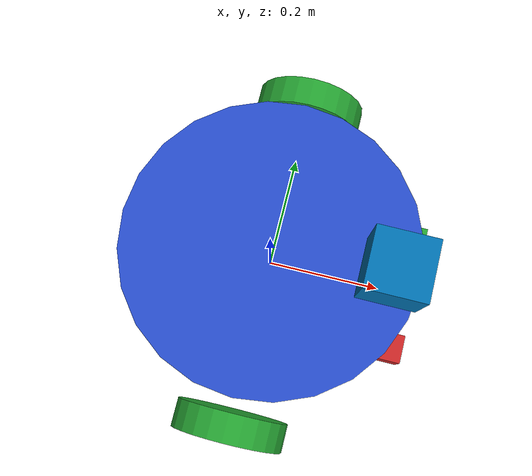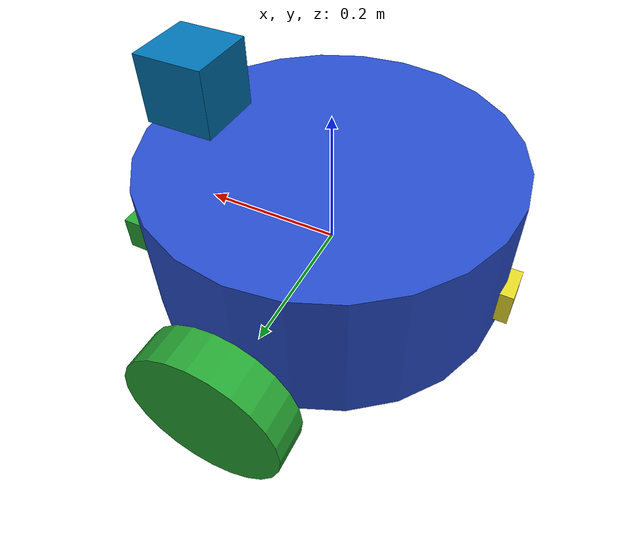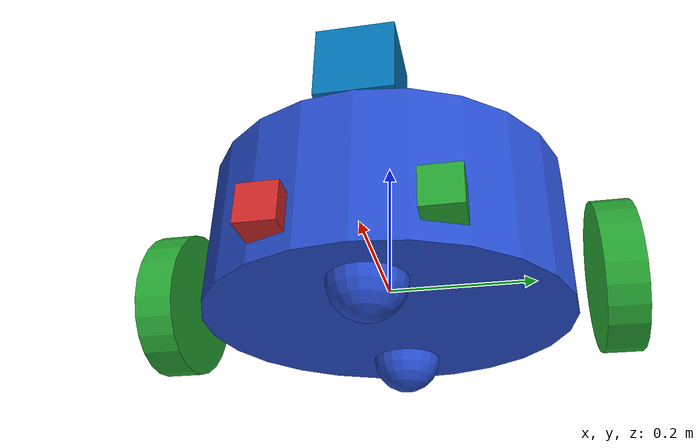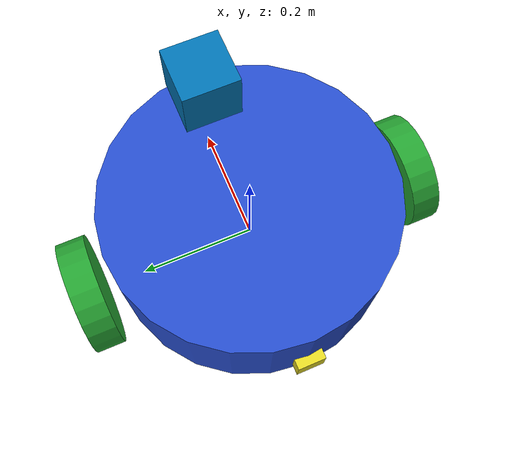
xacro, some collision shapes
<?xml version='1.0'?>

<robot name="trixy" xmlns:xacro="http://www.ros.org/wiki/xacro">

  <xacro:include filename="$(find trixy)/urdf/trixy.gazebo" />

  <gazebo reference="left_wheel">
    <material>Gazebo/Green</material>
  </gazebo>

  <gazebo reference="right_wheel">
    <material>Gazebo/Green</material>
  </gazebo>

  <gazebo reference="left_camera">
    <material>Gazebo/Green</material>
  </gazebo>

  <gazebo reference="right_camera">
    <material>Gazebo/Red</material>
  </gazebo>

  <gazebo reference="rear_camera">
    <material>Gazebo/Yellow</material>
  </gazebo>

  <gazebo reference="chassis">
    <material>Gazebo/Blue</material>
  </gazebo>
  <link name="robot_footprint"></link>

  <joint name="robot_footprint_joint" type="fixed">
    <origin xyz="0 0 0" rpy="0 0 0" />
    <parent link="robot_footprint"/>
    <child link="chassis" />
  </joint>

  <joint name="left_camera_joint" type="fixed">
    <origin xyz="0.24 0.100 0" rpy="0 0 0" />
    <parent link="chassis"/>
    <child link="left_camera" />
    <axis xyz="0 1 0"/>
  </joint>

  <!-- Cámara derecha -->
  <joint name="right_camera_joint" type="fixed">
   <origin xyz="0.24 -0.100 0" rpy="0 0 0" />
    <parent link="chassis"/>
    <child link="right_camera" />
    <axis xyz="0 1 0"/>
  </joint>

  <!-- Cámara trasera -->
  <joint name="rear_camera_joint" type="fixed">
   <origin xyz="-0.24 0 0" rpy="0 0 3.1416" />
    <parent link="chassis"/>
    <child link="rear_camera" />
    <axis xyz="0 1 0"/>
  </joint>

  <joint name="hokuyo_joint" type="fixed">
    <origin xyz="0.2 0 0.2" rpy="0 0 0" />
    <parent link="chassis"/>
    <child link="hokuyo" />
    <axis xyz="0 1 0"/>
  </joint>

  <joint type="continuous" name="left_wheel_hinge">
    <origin xyz="0 0.30 0" rpy="0 0 0" />
    <parent link="chassis"/>
    <child link="left_wheel" />
    <axis xyz="0 1 0" rpy="0 0 0" />
    <limit effort="10000" velocity="1000" />
    <dynamics damping="1.0" friction="1.0" />
  </joint>

  <joint type="continuous" name="right_wheel_hinge">
    <origin xyz="0 -0.30 0" rpy="0 0 0" />
    <parent link="chassis"/>
    <child link="right_wheel" />
    <axis xyz="0 1 0" rpy="0 0 0" />
    <limit effort="10000" velocity="1000" />
    <dynamics damping="1.0" friction="1.0" />
  </joint>

  <!-- Cámara izquierda -->
  <link name="left_camera">
    <inertial>
      <mass value="0.1"/>
      <origin xyz="0 0 0" rpy="0 0 0"/>
      <inertia
        ixx="1e-6" ixy="0.0" ixz="0.0"
        iyy="1e-6" iyz="0.0"
        izz="1e-6"
      />
    </inertial>

    <collision>
      <origin xyz="0 0 0" rpy="0 0 0"/>
      <geometry>
        <box size="0.05 0.05 0.05"/>
      </geometry>
    </collision>

    <visual>
      <origin xyz="0 0 0" rpy="0 0 0"/>
      <geometry>
        <box size="0.05 0.05 0.05"/>
      </geometry>
    </visual>

  </link>

  <!-- Cámara derecha -->
  <link name="right_camera">
    <inertial>
      <mass value="0.1"/>
      <origin xyz="0 0 0" rpy="0 0 0"/>
      <inertia
        ixx="1e-6" ixy="0.0" ixz="0.0"
        iyy="1e-6" iyz="0.0"
        izz="1e-6"
      />
    </inertial>

    <collision>
      <origin xyz="0 0 0" rpy="0 0 0"/>
      <geometry>
        <box size="0.05 0.05 0.05"/>
      </geometry>
    </collision>

    <visual>
      <origin xyz="0 0 0" rpy="0 0 0"/>
      <geometry>
        <box size="0.05 0.05 0.05"/>
      </geometry>
    </visual>

  </link>

  <!-- Cámara trasera -->
  <link name="rear_camera">
    <inertial>
      <mass value="0.1"/>
      <origin xyz="0 0 0" rpy="0 0 0"/>
      <inertia
        ixx="1e-6" ixy="0.0" ixz="0.0"
        iyy="1e-6" iyz="0.0"
        izz="1e-6"
      />
    </inertial>

    <collision>
      <origin xyz="0 0 0" rpy="0 0 0"/>
      <geometry>
        <box size="0.05 0.05 0.05"/>
      </geometry>
    </collision>

    <visual>
      <origin xyz="0 0 0" rpy="0 0 0"/>
      <geometry>
        <box size="0.05 0.05 0.05"/>
      </geometry>
    </visual>

  </link>

  <link name="hokuyo">
    <inertial>
      <mass value="1e-5"/>
      <origin xyz="0 0 0" rpy="0 0 0"/>
      <inertia
        ixx="1e-6" ixy="0.0" ixz="0.0"
        iyy="1e-6" iyz="0.0"
        izz="1e-6"
      />
    </inertial>

    <collision>
      <origin xyz="0 0 0" rpy="0 0 0"/>
      <geometry>
        <box size="0.1 0.1 0.1"/>
      </geometry>
    </collision>

    <visual>
      <origin xyz="0 0 0" rpy="0 0 0"/>
      <geometry>
        <mesh filename="package://trixy/meshes/hokuyo.dae"/>
      </geometry>
    </visual>

  </link>

  <link name="left_wheel">
    <inertial>
      <mass value="5"/>
      <origin xyz="0 0 0" rpy="0 1.5707 1.5707"/>
      <inertia
        ixx="0.1" ixy="0.0" ixz="0.0"
        iyy="0.1" iyz="0.0"
        izz="0.1"
      />
    </inertial>

    <collision>
      <origin xyz="0 0 0" rpy="0 1.5707 1.5707"/>
      <geometry>
        <cylinder radius="0.1" length="0.05"/>
      </geometry>
    </collision>

    <visual>
      <origin xyz="0 0 0" rpy="0 1.5707 1.5707"/>
      <geometry>
        <cylinder radius="0.1" length="0.05"/>
      </geometry>
    </visual>

  </link>

  <link name="right_wheel">
    <inertial>
      <mass value="5"/>
      <origin xyz="0 0 0" rpy="0 1.5707 1.5707"/>
      <inertia
        ixx="0.1" ixy="0.0" ixz="0.0"
        iyy="0.1" iyz="0.0"
        izz="0.1"
      />
    </inertial>

    <collision>
      <origin xyz="0 0 0" rpy="0 1.5707 1.5707"/>
      <geometry>
        <cylinder radius="0.1" length="0.05"/>
      </geometry>
    </collision>

    <visual>
      <origin xyz="0 0 0" rpy="0 1.5707 1.5707"/>
      <geometry>
        <cylinder radius="0.1" length="0.05"/>
      </geometry>
    </visual>

  </link>

  <link name='chassis'>
    <pose>0 0 0.1 0 0 0</pose>

    <inertial>
      <mass value="15.0"/>
      <origin xyz="0.0 0 0" rpy=" 0 0 0"/>
      <inertia
          ixx="0.1" ixy="0" ixz="0"
          iyy="0.1" iyz="0"
          izz="0.1"
      />
    </inertial>

    <collision name='collision'>
      <origin xyz="0 0 0.05" rpy=" 0 0 0"/>
      <geometry>
        <cylinder length="0.2" radius="0.25"/>
      </geometry>
    </collision>

    <visual name='chassis_visual'>
      <origin xyz="0 0 0.05" rpy=" 0 0 0"/>
      <geometry>
       <cylinder length="0.2" radius="0.25"/>
      </geometry>
    </visual>

    <collision name='back_caster_collision'>
      <origin xyz="-0.15 0 -0.05" rpy=" 0 0 0"/>
      <geometry>
        <sphere radius="0.0499"/>
      </geometry>
    </collision>

    <visual name='back_caster_visual'>
      <origin xyz="-0.15 0 -0.05" rpy=" 0 0 0"/>
      <geometry>
        <sphere radius="0.05"/>
      </geometry>
    </visual>

    <collision name='front_caster_collision'>
      <origin xyz="0.15 0 -0.05" rpy=" 0 0 0"/>
      <geometry>
        <sphere radius="0.0499"/>
      </geometry>
    </collision>

    <visual name='front_caster_visual'>
      <origin xyz="0.15 0 -0.05" rpy=" 0 0 0"/>
      <geometry>
        <sphere radius="0.05"/>
      </geometry>
    </visual>

  </link>

</robot>
